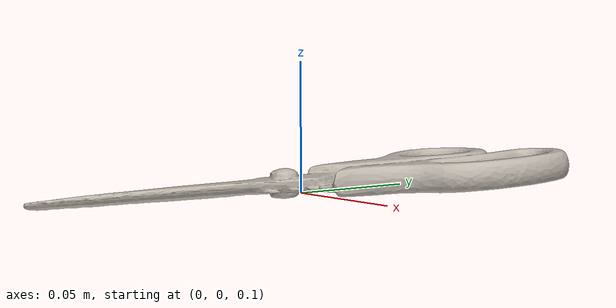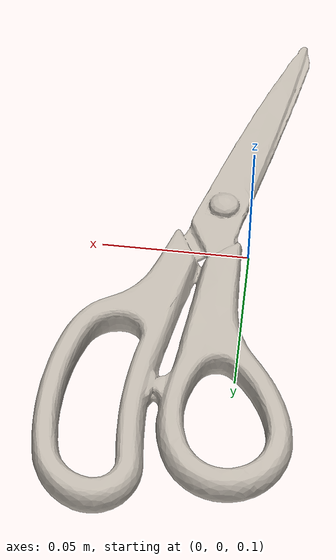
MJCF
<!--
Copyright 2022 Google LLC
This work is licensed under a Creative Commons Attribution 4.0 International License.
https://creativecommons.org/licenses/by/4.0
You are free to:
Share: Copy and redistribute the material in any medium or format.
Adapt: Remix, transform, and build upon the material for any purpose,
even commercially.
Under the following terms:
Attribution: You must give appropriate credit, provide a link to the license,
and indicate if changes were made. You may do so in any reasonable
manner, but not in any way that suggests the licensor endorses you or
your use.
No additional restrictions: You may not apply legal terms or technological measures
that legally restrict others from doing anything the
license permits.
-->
<mujoco model="Diamond_Visions_Scissors_Red">
  <compiler assetdir="meshes" texturedir="materials/textures"/>

  <asset>
    <texture type="2d" name="texture" file="texture.png"/>
    <material name="texture" texture="texture"/>

    <mesh file="model.obj"/>
    <mesh file="coacd_part_000.obj"/>
    <mesh file="coacd_part_001.obj"/>
    <mesh file="coacd_part_002.obj"/>
    <mesh file="coacd_part_003.obj"/>
    <mesh file="coacd_part_004.obj"/>
    <mesh file="coacd_part_005.obj"/>
    <mesh file="coacd_part_006.obj"/>
    <mesh file="coacd_part_007.obj"/>
    <mesh file="coacd_part_008.obj"/>
    <mesh file="coacd_part_009.obj"/>
    <mesh file="coacd_part_010.obj"/>
    <mesh file="coacd_part_011.obj"/>
  </asset>

  <default>
    <default class="Diamond_Visions_Scissors_Red">
      <default class="visual_Diamond_Visions_Scissors_Red">
        <geom type="mesh" group="2" density="200" contype="0" conaffinity="0" material="texture"/>
      </default>
      <default class="collision_Diamond_Visions_Scissors_Red">
        <geom type="mesh" group="3" mass="0" density="0" solref=".004 1" friction="1.0 0.01 0.01" condim="6"/>
      </default>
    </default>
  </default>

  <worldbody>
    <body childclass="Diamond_Visions_Scissors_Red" pos="0 0 0.1">
      <freejoint/>
      <geom class="visual_Diamond_Visions_Scissors_Red" mesh="model"/>
      <geom class="collision_Diamond_Visions_Scissors_Red" mesh="coacd_part_000" rgba="0.375 0.95 0.73 1"/>
      <geom class="collision_Diamond_Visions_Scissors_Red" mesh="coacd_part_001" rgba="0.599 0.16 0.16 1"/>
      <geom class="collision_Diamond_Visions_Scissors_Red" mesh="coacd_part_002" rgba="0.058 0.87 0.60 1"/>
      <geom class="collision_Diamond_Visions_Scissors_Red" mesh="coacd_part_003" rgba="0.708 0.02 0.97 1"/>
      <geom class="collision_Diamond_Visions_Scissors_Red" mesh="coacd_part_004" rgba="0.832 0.21 0.18 1"/>
      <geom class="collision_Diamond_Visions_Scissors_Red" mesh="coacd_part_005" rgba="0.183 0.30 0.52 1"/>
      <geom class="collision_Diamond_Visions_Scissors_Red" mesh="coacd_part_006" rgba="0.432 0.29 0.61 1"/>
      <geom class="collision_Diamond_Visions_Scissors_Red" mesh="coacd_part_007" rgba="0.139 0.29 0.37 1"/>
      <geom class="collision_Diamond_Visions_Scissors_Red" mesh="coacd_part_008" rgba="0.456 0.79 0.20 1"/>
      <geom class="collision_Diamond_Visions_Scissors_Red" mesh="coacd_part_009" rgba="0.514 0.59 0.05 1"/>
      <geom class="collision_Diamond_Visions_Scissors_Red" mesh="coacd_part_010" rgba="0.608 0.17 0.07 1"/>
      <geom class="collision_Diamond_Visions_Scissors_Red" mesh="coacd_part_011" rgba="0.949 0.97 0.81 1"/>
    </body>
  </worldbody>
</mujoco>
